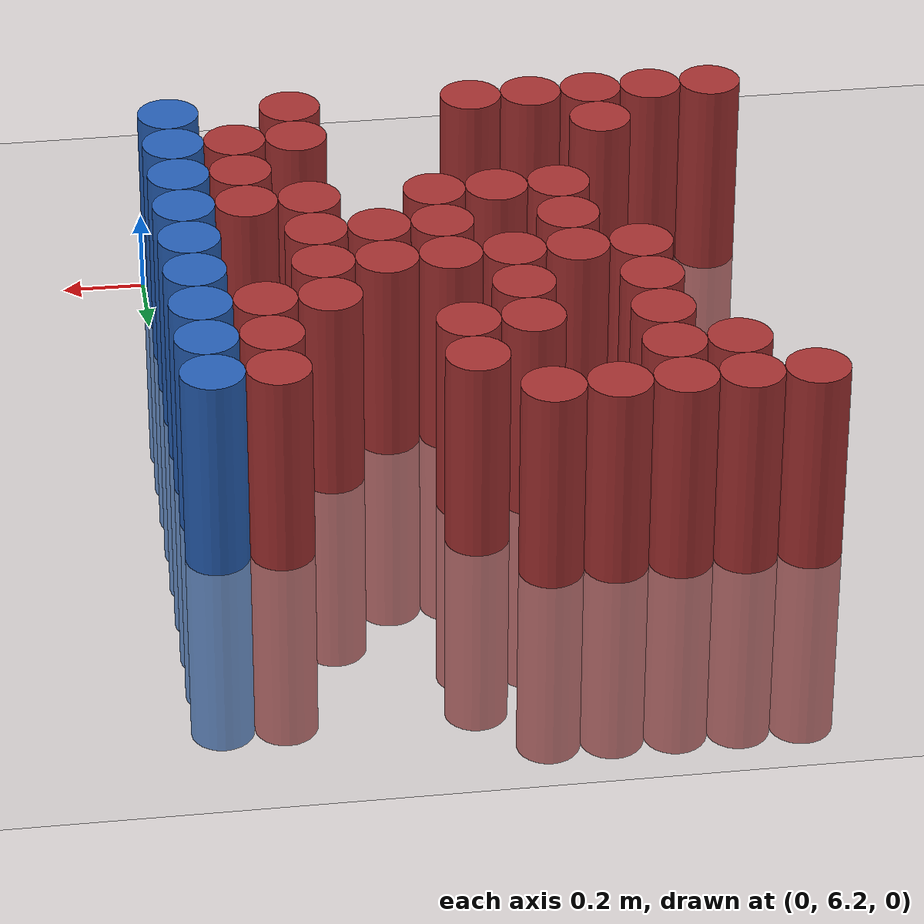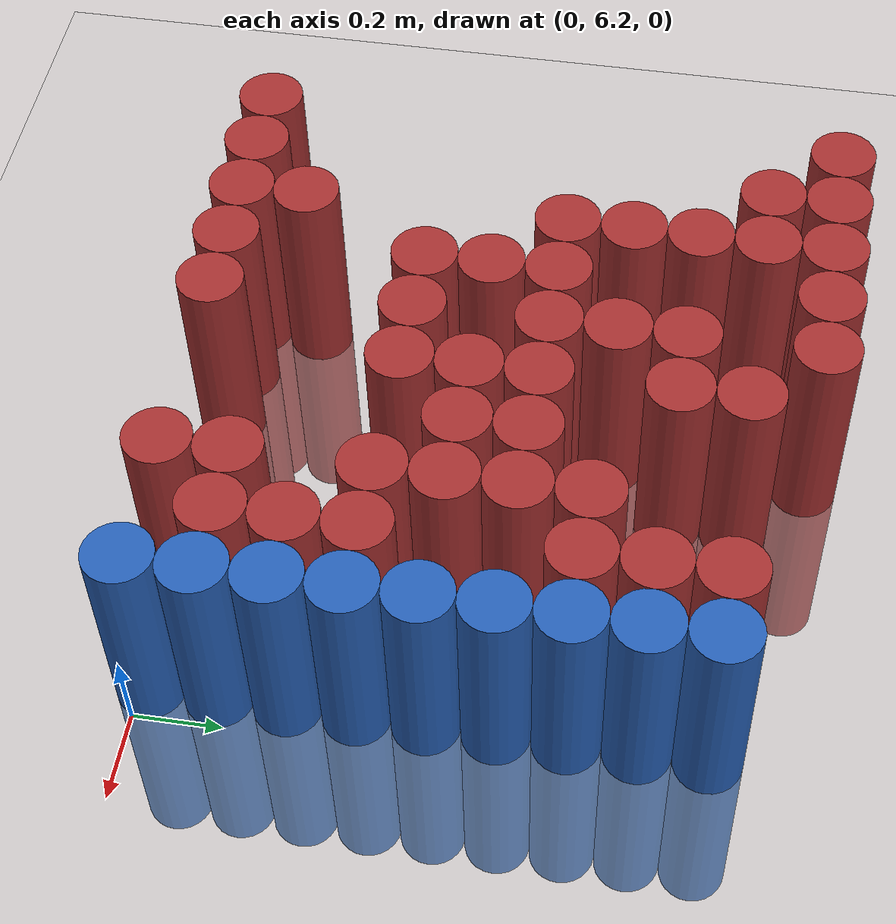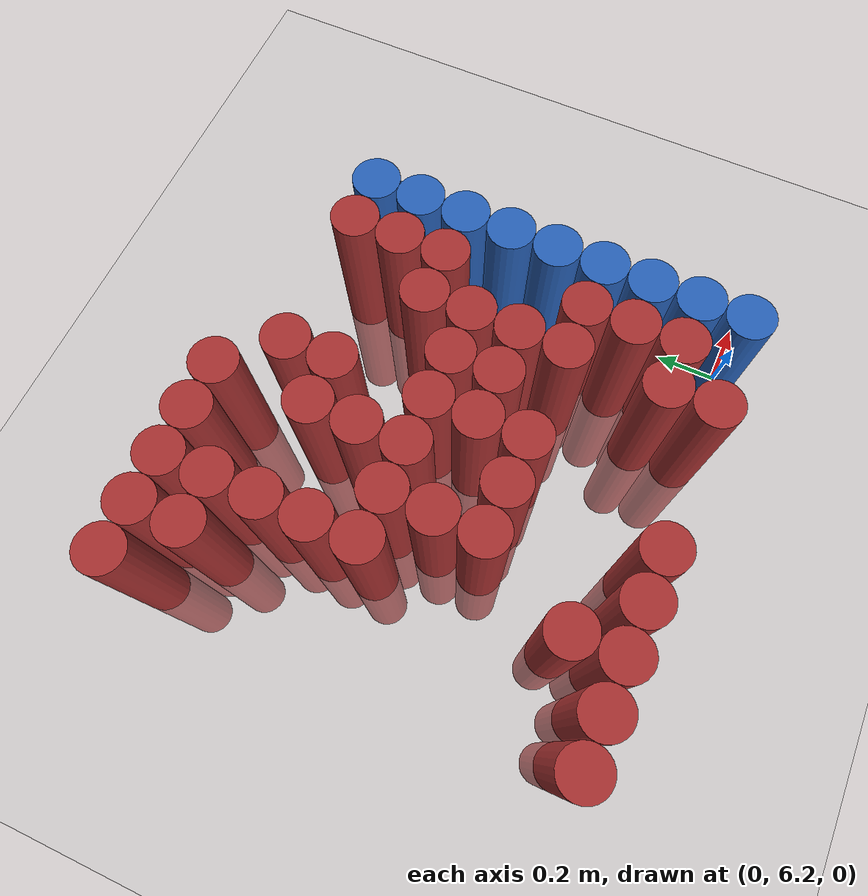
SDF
<sdf version="1.6">
 <world name="default">
  <model name="ground_plane">
   <static>1</static>
   <link name="link">
    <collision name="collision">
     <geometry><plane><normal>0 0 1</normal><size>100 100</size></plane></geometry>
     <surface><friction><ode><mu>100</mu><mu2>50</mu2></ode></friction></surface>
    </collision>
    <visual name="visual">
     <cast_shadows>0</cast_shadows>
     <geometry><plane><normal>0 0 1</normal><size>100 100</size></plane></geometry>
     <material>
      <script><uri>file://media/materials/scripts/gazebo.material</uri><name>Gazebo/Grey</name></script>
     </material>
    </visual>
   </link>
  </model>
  <model name="unit_cylinder_233">
   <static>1</static>
   <pose>-1.425000 6.225000 0.000000 0.000000 0.000000 0.000000</pose>
   <link name="link">
    <inertial>
     <mass>1</mass>
     <inertia><ixx>0.145833</ixx><ixy>0</ixy><ixz>0</ixz><iyy>0.145833</iyy><iyz>0</iyz><izz>0.125</izz></inertia>
    </inertial>
    <collision name="collision">
     <geometry><cylinder><radius>0.075000</radius><length>1</length></cylinder></geometry>
    </collision>
    <visual name="visual">
     <geometry><cylinder><radius>0.075000</radius><length>1</length></cylinder></geometry>
     <material>
      <ambient>0.648000 0.192000 0.192000 1</ambient>
      <diffuse>0.648000 0.192000 0.192000 1</diffuse>
     </material>
     <material>
      <script><name>Gazebo/Grey</name><uri>file://media/materials/scripts/gazebo.material</uri></script>
     </material>
    </visual>
   </link>
  </model>
  <model name="unit_cylinder_234">
   <static>1</static>
   <pose>-1.425000 7.575000 0.000000 0.000000 0.000000 0.000000</pose>
   <link name="link">
    <inertial>
     <mass>1</mass>
     <inertia><ixx>0.145833</ixx><ixy>0</ixy><ixz>0</ixz><iyy>0.145833</iyy><iyz>0</iyz><izz>0.125</izz></inertia>
    </inertial>
    <collision name="collision">
     <geometry><cylinder><radius>0.075000</radius><length>1</length></cylinder></geometry>
    </collision>
    <visual name="visual">
     <geometry><cylinder><radius>0.075000</radius><length>1</length></cylinder></geometry>
     <material>
      <ambient>0.648000 0.192000 0.192000 1</ambient>
      <diffuse>0.648000 0.192000 0.192000 1</diffuse>
     </material>
     <material>
      <script><name>Gazebo/Grey</name><uri>file://media/materials/scripts/gazebo.material</uri></script>
     </material>
    </visual>
   </link>
  </model>
  <model name="unit_cylinder_242">
   <static>1</static>
   <pose>-1.275000 6.225000 0.000000 0.000000 0.000000 0.000000</pose>
   <link name="link">
    <inertial>
     <mass>1</mass>
     <inertia><ixx>0.145833</ixx><ixy>0</ixy><ixz>0</ixz><iyy>0.145833</iyy><iyz>0</iyz><izz>0.125</izz></inertia>
    </inertial>
    <collision name="collision">
     <geometry><cylinder><radius>0.075000</radius><length>1</length></cylinder></geometry>
    </collision>
    <visual name="visual">
     <geometry><cylinder><radius>0.075000</radius><length>1</length></cylinder></geometry>
     <material>
      <ambient>0.648000 0.192000 0.192000 1</ambient>
      <diffuse>0.648000 0.192000 0.192000 1</diffuse>
     </material>
     <material>
      <script><name>Gazebo/Grey</name><uri>file://media/materials/scripts/gazebo.material</uri></script>
     </material>
    </visual>
   </link>
  </model>
  <model name="unit_cylinder_243">
   <static>1</static>
   <pose>-1.275000 7.425000 0.000000 0.000000 0.000000 0.000000</pose>
   <link name="link">
    <inertial>
     <mass>1</mass>
     <inertia><ixx>0.145833</ixx><ixy>0</ixy><ixz>0</ixz><iyy>0.145833</iyy><iyz>0</iyz><izz>0.125</izz></inertia>
    </inertial>
    <collision name="collision">
     <geometry><cylinder><radius>0.075000</radius><length>1</length></cylinder></geometry>
    </collision>
    <visual name="visual">
     <geometry><cylinder><radius>0.075000</radius><length>1</length></cylinder></geometry>
     <material>
      <ambient>0.648000 0.192000 0.192000 1</ambient>
      <diffuse>0.648000 0.192000 0.192000 1</diffuse>
     </material>
     <material>
      <script><name>Gazebo/Grey</name><uri>file://media/materials/scripts/gazebo.material</uri></script>
     </material>
    </visual>
   </link>
  </model>
  <model name="unit_cylinder_244">
   <static>1</static>
   <pose>-1.275000 7.575000 0.000000 0.000000 0.000000 0.000000</pose>
   <link name="link">
    <inertial>
     <mass>1</mass>
     <inertia><ixx>0.145833</ixx><ixy>0</ixy><ixz>0</ixz><iyy>0.145833</iyy><iyz>0</iyz><izz>0.125</izz></inertia>
    </inertial>
    <collision name="collision">
     <geometry><cylinder><radius>0.075000</radius><length>1</length></cylinder></geometry>
    </collision>
    <visual name="visual">
     <geometry><cylinder><radius>0.075000</radius><length>1</length></cylinder></geometry>
     <material>
      <ambient>0.648000 0.192000 0.192000 1</ambient>
      <diffuse>0.648000 0.192000 0.192000 1</diffuse>
     </material>
     <material>
      <script><name>Gazebo/Grey</name><uri>file://media/materials/scripts/gazebo.material</uri></script>
     </material>
    </visual>
   </link>
  </model>
  <model name="unit_cylinder_252">
   <static>1</static>
   <pose>-1.125000 6.225000 0.000000 0.000000 0.000000 0.000000</pose>
   <link name="link">
    <inertial>
     <mass>1</mass>
     <inertia><ixx>0.145833</ixx><ixy>0</ixy><ixz>0</ixz><iyy>0.145833</iyy><iyz>0</iyz><izz>0.125</izz></inertia>
    </inertial>
    <collision name="collision">
     <geometry><cylinder><radius>0.075000</radius><length>1</length></cylinder></geometry>
    </collision>
    <visual name="visual">
     <geometry><cylinder><radius>0.075000</radius><length>1</length></cylinder></geometry>
     <material>
      <ambient>0.648000 0.192000 0.192000 1</ambient>
      <diffuse>0.648000 0.192000 0.192000 1</diffuse>
     </material>
     <material>
      <script><name>Gazebo/Grey</name><uri>file://media/materials/scripts/gazebo.material</uri></script>
     </material>
    </visual>
   </link>
  </model>
  <model name="unit_cylinder_253">
   <static>1</static>
   <pose>-1.125000 6.375000 0.000000 0.000000 0.000000 0.000000</pose>
   <link name="link">
    <inertial>
     <mass>1</mass>
     <inertia><ixx>0.145833</ixx><ixy>0</ixy><ixz>0</ixz><iyy>0.145833</iyy><iyz>0</iyz><izz>0.125</izz></inertia>
    </inertial>
    <collision name="collision">
     <geometry><cylinder><radius>0.075000</radius><length>1</length></cylinder></geometry>
    </collision>
    <visual name="visual">
     <geometry><cylinder><radius>0.075000</radius><length>1</length></cylinder></geometry>
     <material>
      <ambient>0.648000 0.192000 0.192000 1</ambient>
      <diffuse>0.648000 0.192000 0.192000 1</diffuse>
     </material>
     <material>
      <script><name>Gazebo/Grey</name><uri>file://media/materials/scripts/gazebo.material</uri></script>
     </material>
    </visual>
   </link>
  </model>
  <model name="unit_cylinder_254">
   <static>1</static>
   <pose>-1.125000 6.975000 0.000000 0.000000 0.000000 0.000000</pose>
   <link name="link">
    <inertial>
     <mass>1</mass>
     <inertia><ixx>0.145833</ixx><ixy>0</ixy><ixz>0</ixz><iyy>0.145833</iyy><iyz>0</iyz><izz>0.125</izz></inertia>
    </inertial>
    <collision name="collision">
     <geometry><cylinder><radius>0.075000</radius><length>1</length></cylinder></geometry>
    </collision>
    <visual name="visual">
     <geometry><cylinder><radius>0.075000</radius><length>1</length></cylinder></geometry>
     <material>
      <ambient>0.648000 0.192000 0.192000 1</ambient>
      <diffuse>0.648000 0.192000 0.192000 1</diffuse>
     </material>
     <material>
      <script><name>Gazebo/Grey</name><uri>file://media/materials/scripts/gazebo.material</uri></script>
     </material>
    </visual>
   </link>
  </model>
  <model name="unit_cylinder_255">
   <static>1</static>
   <pose>-1.125000 7.125000 0.000000 0.000000 0.000000 0.000000</pose>
   <link name="link">
    <inertial>
     <mass>1</mass>
     <inertia><ixx>0.145833</ixx><ixy>0</ixy><ixz>0</ixz><iyy>0.145833</iyy><iyz>0</iyz><izz>0.125</izz></inertia>
    </inertial>
    <collision name="collision">
     <geometry><cylinder><radius>0.075000</radius><length>1</length></cylinder></geometry>
    </collision>
    <visual name="visual">
     <geometry><cylinder><radius>0.075000</radius><length>1</length></cylinder></geometry>
     <material>
      <ambient>0.648000 0.192000 0.192000 1</ambient>
      <diffuse>0.648000 0.192000 0.192000 1</diffuse>
     </material>
     <material>
      <script><name>Gazebo/Grey</name><uri>file://media/materials/scripts/gazebo.material</uri></script>
     </material>
    </visual>
   </link>
  </model>
  <model name="unit_cylinder_256">
   <static>1</static>
   <pose>-1.125000 7.275000 0.000000 0.000000 0.000000 0.000000</pose>
   <link name="link">
    <inertial>
     <mass>1</mass>
     <inertia><ixx>0.145833</ixx><ixy>0</ixy><ixz>0</ixz><iyy>0.145833</iyy><iyz>0</iyz><izz>0.125</izz></inertia>
    </inertial>
    <collision name="collision">
     <geometry><cylinder><radius>0.075000</radius><length>1</length></cylinder></geometry>
    </collision>
    <visual name="visual">
     <geometry><cylinder><radius>0.075000</radius><length>1</length></cylinder></geometry>
     <material>
      <ambient>0.648000 0.192000 0.192000 1</ambient>
      <diffuse>0.648000 0.192000 0.192000 1</diffuse>
     </material>
     <material>
      <script><name>Gazebo/Grey</name><uri>file://media/materials/scripts/gazebo.material</uri></script>
     </material>
    </visual>
   </link>
  </model>
  <model name="unit_cylinder_257">
   <static>1</static>
   <pose>-1.125000 7.425000 0.000000 0.000000 0.000000 0.000000</pose>
   <link name="link">
    <inertial>
     <mass>1</mass>
     <inertia><ixx>0.145833</ixx><ixy>0</ixy><ixz>0</ixz><iyy>0.145833</iyy><iyz>0</iyz><izz>0.125</izz></inertia>
    </inertial>
    <collision name="collision">
     <geometry><cylinder><radius>0.075000</radius><length>1</length></cylinder></geometry>
    </collision>
    <visual name="visual">
     <geometry><cylinder><radius>0.075000</radius><length>1</length></cylinder></geometry>
     <material>
      <ambient>0.648000 0.192000 0.192000 1</ambient>
      <diffuse>0.648000 0.192000 0.192000 1</diffuse>
     </material>
     <material>
      <script><name>Gazebo/Grey</name><uri>file://media/materials/scripts/gazebo.material</uri></script>
     </material>
    </visual>
   </link>
  </model>
  <model name="unit_cylinder_258">
   <static>1</static>
   <pose>-1.125000 7.575000 0.000000 0.000000 0.000000 0.000000</pose>
   <link name="link">
    <inertial>
     <mass>1</mass>
     <inertia><ixx>0.145833</ixx><ixy>0</ixy><ixz>0</ixz><iyy>0.145833</iyy><iyz>0</iyz><izz>0.125</izz></inertia>
    </inertial>
    <collision name="collision">
     <geometry><cylinder><radius>0.075000</radius><length>1</length></cylinder></geometry>
    </collision>
    <visual name="visual">
     <geometry><cylinder><radius>0.075000</radius><length>1</length></cylinder></geometry>
     <material>
      <ambient>0.648000 0.192000 0.192000 1</ambient>
      <diffuse>0.648000 0.192000 0.192000 1</diffuse>
     </material>
     <material>
      <script><name>Gazebo/Grey</name><uri>file://media/materials/scripts/gazebo.material</uri></script>
     </material>
    </visual>
   </link>
  </model>
  <model name="unit_cylinder_262">
   <static>1</static>
   <pose>-0.975000 6.225000 0.000000 0.000000 0.000000 0.000000</pose>
   <link name="link">
    <inertial>
     <mass>1</mass>
     <inertia><ixx>0.145833</ixx><ixy>0</ixy><ixz>0</ixz><iyy>0.145833</iyy><iyz>0</iyz><izz>0.125</izz></inertia>
    </inertial>
    <collision name="collision">
     <geometry><cylinder><radius>0.075000</radius><length>1</length></cylinder></geometry>
    </collision>
    <visual name="visual">
     <geometry><cylinder><radius>0.075000</radius><length>1</length></cylinder></geometry>
     <material>
      <ambient>0.648000 0.192000 0.192000 1</ambient>
      <diffuse>0.648000 0.192000 0.192000 1</diffuse>
     </material>
     <material>
      <script><name>Gazebo/Grey</name><uri>file://media/materials/scripts/gazebo.material</uri></script>
     </material>
    </visual>
   </link>
  </model>
  <model name="unit_cylinder_263">
   <static>1</static>
   <pose>-0.975000 6.675000 0.000000 0.000000 0.000000 0.000000</pose>
   <link name="link">
    <inertial>
     <mass>1</mass>
     <inertia><ixx>0.145833</ixx><ixy>0</ixy><ixz>0</ixz><iyy>0.145833</iyy><iyz>0</iyz><izz>0.125</izz></inertia>
    </inertial>
    <collision name="collision">
     <geometry><cylinder><radius>0.075000</radius><length>1</length></cylinder></geometry>
    </collision>
    <visual name="visual">
     <geometry><cylinder><radius>0.075000</radius><length>1</length></cylinder></geometry>
     <material>
      <ambient>0.648000 0.192000 0.192000 1</ambient>
      <diffuse>0.648000 0.192000 0.192000 1</diffuse>
     </material>
     <material>
      <script><name>Gazebo/Grey</name><uri>file://media/materials/scripts/gazebo.material</uri></script>
     </material>
    </visual>
   </link>
  </model>
  <model name="unit_cylinder_264">
   <static>1</static>
   <pose>-0.975000 6.825000 0.000000 0.000000 0.000000 0.000000</pose>
   <link name="link">
    <inertial>
     <mass>1</mass>
     <inertia><ixx>0.145833</ixx><ixy>0</ixy><ixz>0</ixz><iyy>0.145833</iyy><iyz>0</iyz><izz>0.125</izz></inertia>
    </inertial>
    <collision name="collision">
     <geometry><cylinder><radius>0.075000</radius><length>1</length></cylinder></geometry>
    </collision>
    <visual name="visual">
     <geometry><cylinder><radius>0.075000</radius><length>1</length></cylinder></geometry>
     <material>
      <ambient>0.648000 0.192000 0.192000 1</ambient>
      <diffuse>0.648000 0.192000 0.192000 1</diffuse>
     </material>
     <material>
      <script><name>Gazebo/Grey</name><uri>file://media/materials/scripts/gazebo.material</uri></script>
     </material>
    </visual>
   </link>
  </model>
  <model name="unit_cylinder_265">
   <static>1</static>
   <pose>-0.975000 6.975000 0.000000 0.000000 0.000000 0.000000</pose>
   <link name="link">
    <inertial>
     <mass>1</mass>
     <inertia><ixx>0.145833</ixx><ixy>0</ixy><ixz>0</ixz><iyy>0.145833</iyy><iyz>0</iyz><izz>0.125</izz></inertia>
    </inertial>
    <collision name="collision">
     <geometry><cylinder><radius>0.075000</radius><length>1</length></cylinder></geometry>
    </collision>
    <visual name="visual">
     <geometry><cylinder><radius>0.075000</radius><length>1</length></cylinder></geometry>
     <material>
      <ambient>0.648000 0.192000 0.192000 1</ambient>
      <diffuse>0.648000 0.192000 0.192000 1</diffuse>
     </material>
     <material>
      <script><name>Gazebo/Grey</name><uri>file://media/materials/scripts/gazebo.material</uri></script>
     </material>
    </visual>
   </link>
  </model>
  <model name="unit_cylinder_266">
   <static>1</static>
   <pose>-0.975000 7.575000 0.000000 0.000000 0.000000 0.000000</pose>
   <link name="link">
    <inertial>
     <mass>1</mass>
     <inertia><ixx>0.145833</ixx><ixy>0</ixy><ixz>0</ixz><iyy>0.145833</iyy><iyz>0</iyz><izz>0.125</izz></inertia>
    </inertial>
    <collision name="collision">
     <geometry><cylinder><radius>0.075000</radius><length>1</length></cylinder></geometry>
    </collision>
    <visual name="visual">
     <geometry><cylinder><radius>0.075000</radius><length>1</length></cylinder></geometry>
     <material>
      <ambient>0.648000 0.192000 0.192000 1</ambient>
      <diffuse>0.648000 0.192000 0.192000 1</diffuse>
     </material>
     <material>
      <script><name>Gazebo/Grey</name><uri>file://media/materials/scripts/gazebo.material</uri></script>
     </material>
    </visual>
   </link>
  </model>
  <model name="unit_cylinder_270">
   <static>1</static>
   <pose>-0.825000 6.225000 0.000000 0.000000 0.000000 0.000000</pose>
   <link name="link">
    <inertial>
     <mass>1</mass>
     <inertia><ixx>0.145833</ixx><ixy>0</ixy><ixz>0</ixz><iyy>0.145833</iyy><iyz>0</iyz><izz>0.125</izz></inertia>
    </inertial>
    <collision name="collision">
     <geometry><cylinder><radius>0.075000</radius><length>1</length></cylinder></geometry>
    </collision>
    <visual name="visual">
     <geometry><cylinder><radius>0.075000</radius><length>1</length></cylinder></geometry>
     <material>
      <ambient>0.648000 0.192000 0.192000 1</ambient>
      <diffuse>0.648000 0.192000 0.192000 1</diffuse>
     </material>
     <material>
      <script><name>Gazebo/Grey</name><uri>file://media/materials/scripts/gazebo.material</uri></script>
     </material>
    </visual>
   </link>
  </model>
  <model name="unit_cylinder_271">
   <static>1</static>
   <pose>-0.825000 6.675000 0.000000 0.000000 0.000000 0.000000</pose>
   <link name="link">
    <inertial>
     <mass>1</mass>
     <inertia><ixx>0.145833</ixx><ixy>0</ixy><ixz>0</ixz><iyy>0.145833</iyy><iyz>0</iyz><izz>0.125</izz></inertia>
    </inertial>
    <collision name="collision">
     <geometry><cylinder><radius>0.075000</radius><length>1</length></cylinder></geometry>
    </collision>
    <visual name="visual">
     <geometry><cylinder><radius>0.075000</radius><length>1</length></cylinder></geometry>
     <material>
      <ambient>0.648000 0.192000 0.192000 1</ambient>
      <diffuse>0.648000 0.192000 0.192000 1</diffuse>
     </material>
     <material>
      <script><name>Gazebo/Grey</name><uri>file://media/materials/scripts/gazebo.material</uri></script>
     </material>
    </visual>
   </link>
  </model>
  <model name="unit_cylinder_272">
   <static>1</static>
   <pose>-0.825000 6.975000 0.000000 0.000000 0.000000 0.000000</pose>
   <link name="link">
    <inertial>
     <mass>1</mass>
     <inertia><ixx>0.145833</ixx><ixy>0</ixy><ixz>0</ixz><iyy>0.145833</iyy><iyz>0</iyz><izz>0.125</izz></inertia>
    </inertial>
    <collision name="collision">
     <geometry><cylinder><radius>0.075000</radius><length>1</length></cylinder></geometry>
    </collision>
    <visual name="visual">
     <geometry><cylinder><radius>0.075000</radius><length>1</length></cylinder></geometry>
     <material>
      <ambient>0.648000 0.192000 0.192000 1</ambient>
      <diffuse>0.648000 0.192000 0.192000 1</diffuse>
     </material>
     <material>
      <script><name>Gazebo/Grey</name><uri>file://media/materials/scripts/gazebo.material</uri></script>
     </material>
    </visual>
   </link>
  </model>
  <model name="unit_cylinder_273">
   <static>1</static>
   <pose>-0.825000 7.125000 0.000000 0.000000 0.000000 0.000000</pose>
   <link name="link">
    <inertial>
     <mass>1</mass>
     <inertia><ixx>0.145833</ixx><ixy>0</ixy><ixz>0</ixz><iyy>0.145833</iyy><iyz>0</iyz><izz>0.125</izz></inertia>
    </inertial>
    <collision name="collision">
     <geometry><cylinder><radius>0.075000</radius><length>1</length></cylinder></geometry>
    </collision>
    <visual name="visual">
     <geometry><cylinder><radius>0.075000</radius><length>1</length></cylinder></geometry>
     <material>
      <ambient>0.648000 0.192000 0.192000 1</ambient>
      <diffuse>0.648000 0.192000 0.192000 1</diffuse>
     </material>
     <material>
      <script><name>Gazebo/Grey</name><uri>file://media/materials/scripts/gazebo.material</uri></script>
     </material>
    </visual>
   </link>
  </model>
  <model name="unit_cylinder_274">
   <static>1</static>
   <pose>-0.825000 7.275000 0.000000 0.000000 0.000000 0.000000</pose>
   <link name="link">
    <inertial>
     <mass>1</mass>
     <inertia><ixx>0.145833</ixx><ixy>0</ixy><ixz>0</ixz><iyy>0.145833</iyy><iyz>0</iyz><izz>0.125</izz></inertia>
    </inertial>
    <collision name="collision">
     <geometry><cylinder><radius>0.075000</radius><length>1</length></cylinder></geometry>
    </collision>
    <visual name="visual">
     <geometry><cylinder><radius>0.075000</radius><length>1</length></cylinder></geometry>
     <material>
      <ambient>0.648000 0.192000 0.192000 1</ambient>
      <diffuse>0.648000 0.192000 0.192000 1</diffuse>
     </material>
     <material>
      <script><name>Gazebo/Grey</name><uri>file://media/materials/scripts/gazebo.material</uri></script>
     </material>
    </visual>
   </link>
  </model>
  <model name="unit_cylinder_275">
   <static>1</static>
   <pose>-0.825000 7.575000 0.000000 0.000000 0.000000 0.000000</pose>
   <link name="link">
    <inertial>
     <mass>1</mass>
     <inertia><ixx>0.145833</ixx><ixy>0</ixy><ixz>0</ixz><iyy>0.145833</iyy><iyz>0</iyz><izz>0.125</izz></inertia>
    </inertial>
    <collision name="collision">
     <geometry><cylinder><radius>0.075000</radius><length>1</length></cylinder></geometry>
    </collision>
    <visual name="visual">
     <geometry><cylinder><radius>0.075000</radius><length>1</length></cylinder></geometry>
     <material>
      <ambient>0.648000 0.192000 0.192000 1</ambient>
      <diffuse>0.648000 0.192000 0.192000 1</diffuse>
     </material>
     <material>
      <script><name>Gazebo/Grey</name><uri>file://media/materials/scripts/gazebo.material</uri></script>
     </material>
    </visual>
   </link>
  </model>
  <model name="unit_cylinder_278">
   <static>1</static>
   <pose>-0.675000 6.675000 0.000000 0.000000 0.000000 0.000000</pose>
   <link name="link">
    <inertial>
     <mass>1</mass>
     <inertia><ixx>0.145833</ixx><ixy>0</ixy><ixz>0</ixz><iyy>0.145833</iyy><iyz>0</iyz><izz>0.125</izz></inertia>
    </inertial>
    <collision name="collision">
     <geometry><cylinder><radius>0.075000</radius><length>1</length></cylinder></geometry>
    </collision>
    <visual name="visual">
     <geometry><cylinder><radius>0.075000</radius><length>1</length></cylinder></geometry>
     <material>
      <ambient>0.648000 0.192000 0.192000 1</ambient>
      <diffuse>0.648000 0.192000 0.192000 1</diffuse>
     </material>
     <material>
      <script><name>Gazebo/Grey</name><uri>file://media/materials/scripts/gazebo.material</uri></script>
     </material>
    </visual>
   </link>
  </model>
  <model name="unit_cylinder_279">
   <static>1</static>
   <pose>-0.675000 6.825000 0.000000 0.000000 0.000000 0.000000</pose>
   <link name="link">
    <inertial>
     <mass>1</mass>
     <inertia><ixx>0.145833</ixx><ixy>0</ixy><ixz>0</ixz><iyy>0.145833</iyy><iyz>0</iyz><izz>0.125</izz></inertia>
    </inertial>
    <collision name="collision">
     <geometry><cylinder><radius>0.075000</radius><length>1</length></cylinder></geometry>
    </collision>
    <visual name="visual">
     <geometry><cylinder><radius>0.075000</radius><length>1</length></cylinder></geometry>
     <material>
      <ambient>0.648000 0.192000 0.192000 1</ambient>
      <diffuse>0.648000 0.192000 0.192000 1</diffuse>
     </material>
     <material>
      <script><name>Gazebo/Grey</name><uri>file://media/materials/scripts/gazebo.material</uri></script>
     </material>
    </visual>
   </link>
  </model>
  <model name="unit_cylinder_280">
   <static>1</static>
   <pose>-0.675000 6.975000 0.000000 0.000000 0.000000 0.000000</pose>
   <link name="link">
    <inertial>
     <mass>1</mass>
     <inertia><ixx>0.145833</ixx><ixy>0</ixy><ixz>0</ixz><iyy>0.145833</iyy><iyz>0</iyz><izz>0.125</izz></inertia>
    </inertial>
    <collision name="collision">
     <geometry><cylinder><radius>0.075000</radius><length>1</length></cylinder></geometry>
    </collision>
    <visual name="visual">
     <geometry><cylinder><radius>0.075000</radius><length>1</length></cylinder></geometry>
     <material>
      <ambient>0.648000 0.192000 0.192000 1</ambient>
      <diffuse>0.648000 0.192000 0.192000 1</diffuse>
     </material>
     <material>
      <script><name>Gazebo/Grey</name><uri>file://media/materials/scripts/gazebo.material</uri></script>
     </material>
    </visual>
   </link>
  </model>
  <model name="unit_cylinder_281">
   <static>1</static>
   <pose>-0.675000 7.275000 0.000000 0.000000 0.000000 0.000000</pose>
   <link name="link">
    <inertial>
     <mass>1</mass>
     <inertia><ixx>0.145833</ixx><ixy>0</ixy><ixz>0</ixz><iyy>0.145833</iyy><iyz>0</iyz><izz>0.125</izz></inertia>
    </inertial>
    <collision name="collision">
     <geometry><cylinder><radius>0.075000</radius><length>1</length></cylinder></geometry>
    </collision>
    <visual name="visual">
     <geometry><cylinder><radius>0.075000</radius><length>1</length></cylinder></geometry>
     <material>
      <ambient>0.648000 0.192000 0.192000 1</ambient>
      <diffuse>0.648000 0.192000 0.192000 1</diffuse>
     </material>
     <material>
      <script><name>Gazebo/Grey</name><uri>file://media/materials/scripts/gazebo.material</uri></script>
     </material>
    </visual>
   </link>
  </model>
  <model name="unit_cylinder_282">
   <static>1</static>
   <pose>-0.675000 7.425000 0.000000 0.000000 0.000000 0.000000</pose>
   <link name="link">
    <inertial>
     <mass>1</mass>
     <inertia><ixx>0.145833</ixx><ixy>0</ixy><ixz>0</ixz><iyy>0.145833</iyy><iyz>0</iyz><izz>0.125</izz></inertia>
    </inertial>
    <collision name="collision">
     <geometry><cylinder><radius>0.075000</radius><length>1</length></cylinder></geometry>
    </collision>
    <visual name="visual">
     <geometry><cylinder><radius>0.075000</radius><length>1</length></cylinder></geometry>
     <material>
      <ambient>0.648000 0.192000 0.192000 1</ambient>
      <diffuse>0.648000 0.192000 0.192000 1</diffuse>
     </material>
     <material>
      <script><name>Gazebo/Grey</name><uri>file://media/materials/scripts/gazebo.material</uri></script>
     </material>
    </visual>
   </link>
  </model>
  <model name="unit_cylinder_289">
   <static>1</static>
   <pose>-0.525000 6.825000 0.000000 0.000000 0.000000 0.000000</pose>
   <link name="link">
    <inertial>
     <mass>1</mass>
     <inertia><ixx>0.145833</ixx><ixy>0</ixy><ixz>0</ixz><iyy>0.145833</iyy><iyz>0</iyz><izz>0.125</izz></inertia>
    </inertial>
    <collision name="collision">
     <geometry><cylinder><radius>0.075000</radius><length>1</length></cylinder></geometry>
    </collision>
    <visual name="visual">
     <geometry><cylinder><radius>0.075000</radius><length>1</length></cylinder></geometry>
     <material>
      <ambient>0.648000 0.192000 0.192000 1</ambient>
      <diffuse>0.648000 0.192000 0.192000 1</diffuse>
     </material>
     <material>
      <script><name>Gazebo/Grey</name><uri>file://media/materials/scripts/gazebo.material</uri></script>
     </material>
    </visual>
   </link>
  </model>
  <model name="unit_cylinder_290">
   <static>1</static>
   <pose>-0.525000 6.975000 0.000000 0.000000 0.000000 0.000000</pose>
   <link name="link">
    <inertial>
     <mass>1</mass>
     <inertia><ixx>0.145833</ixx><ixy>0</ixy><ixz>0</ixz><iyy>0.145833</iyy><iyz>0</iyz><izz>0.125</izz></inertia>
    </inertial>
    <collision name="collision">
     <geometry><cylinder><radius>0.075000</radius><length>1</length></cylinder></geometry>
    </collision>
    <visual name="visual">
     <geometry><cylinder><radius>0.075000</radius><length>1</length></cylinder></geometry>
     <material>
      <ambient>0.648000 0.192000 0.192000 1</ambient>
      <diffuse>0.648000 0.192000 0.192000 1</diffuse>
     </material>
     <material>
      <script><name>Gazebo/Grey</name><uri>file://media/materials/scripts/gazebo.material</uri></script>
     </material>
    </visual>
   </link>
  </model>
  <model name="unit_cylinder_301">
   <static>1</static>
   <pose>-0.375000 6.225000 0.000000 0.000000 0.000000 0.000000</pose>
   <link name="link">
    <inertial>
     <mass>1</mass>
     <inertia><ixx>0.145833</ixx><ixy>0</ixy><ixz>0</ixz><iyy>0.145833</iyy><iyz>0</iyz><izz>0.125</izz></inertia>
    </inertial>
    <collision name="collision">
     <geometry><cylinder><radius>0.075000</radius><length>1</length></cylinder></geometry>
    </collision>
    <visual name="visual">
     <geometry><cylinder><radius>0.075000</radius><length>1</length></cylinder></geometry>
     <material>
      <ambient>0.648000 0.192000 0.192000 1</ambient>
      <diffuse>0.648000 0.192000 0.192000 1</diffuse>
     </material>
     <material>
      <script><name>Gazebo/Grey</name><uri>file://media/materials/scripts/gazebo.material</uri></script>
     </material>
    </visual>
   </link>
  </model>
  <model name="unit_cylinder_302">
   <static>1</static>
   <pose>-0.375000 6.375000 0.000000 0.000000 0.000000 0.000000</pose>
   <link name="link">
    <inertial>
     <mass>1</mass>
     <inertia><ixx>0.145833</ixx><ixy>0</ixy><ixz>0</ixz><iyy>0.145833</iyy><iyz>0</iyz><izz>0.125</izz></inertia>
    </inertial>
    <collision name="collision">
     <geometry><cylinder><radius>0.075000</radius><length>1</length></cylinder></geometry>
    </collision>
    <visual name="visual">
     <geometry><cylinder><radius>0.075000</radius><length>1</length></cylinder></geometry>
     <material>
      <ambient>0.648000 0.192000 0.192000 1</ambient>
      <diffuse>0.648000 0.192000 0.192000 1</diffuse>
     </material>
     <material>
      <script><name>Gazebo/Grey</name><uri>file://media/materials/scripts/gazebo.material</uri></script>
     </material>
    </visual>
   </link>
  </model>
  <model name="unit_cylinder_303">
   <static>1</static>
   <pose>-0.375000 6.675000 0.000000 0.000000 0.000000 0.000000</pose>
   <link name="link">
    <inertial>
     <mass>1</mass>
     <inertia><ixx>0.145833</ixx><ixy>0</ixy><ixz>0</ixz><iyy>0.145833</iyy><iyz>0</iyz><izz>0.125</izz></inertia>
    </inertial>
    <collision name="collision">
     <geometry><cylinder><radius>0.075000</radius><length>1</length></cylinder></geometry>
    </collision>
    <visual name="visual">
     <geometry><cylinder><radius>0.075000</radius><length>1</length></cylinder></geometry>
     <material>
      <ambient>0.648000 0.192000 0.192000 1</ambient>
      <diffuse>0.648000 0.192000 0.192000 1</diffuse>
     </material>
     <material>
      <script><name>Gazebo/Grey</name><uri>file://media/materials/scripts/gazebo.material</uri></script>
     </material>
    </visual>
   </link>
  </model>
  <model name="unit_cylinder_304">
   <static>1</static>
   <pose>-0.375000 6.825000 0.000000 0.000000 0.000000 0.000000</pose>
   <link name="link">
    <inertial>
     <mass>1</mass>
     <inertia><ixx>0.145833</ixx><ixy>0</ixy><ixz>0</ixz><iyy>0.145833</iyy><iyz>0</iyz><izz>0.125</izz></inertia>
    </inertial>
    <collision name="collision">
     <geometry><cylinder><radius>0.075000</radius><length>1</length></cylinder></geometry>
    </collision>
    <visual name="visual">
     <geometry><cylinder><radius>0.075000</radius><length>1</length></cylinder></geometry>
     <material>
      <ambient>0.648000 0.192000 0.192000 1</ambient>
      <diffuse>0.648000 0.192000 0.192000 1</diffuse>
     </material>
     <material>
      <script><name>Gazebo/Grey</name><uri>file://media/materials/scripts/gazebo.material</uri></script>
     </material>
    </visual>
   </link>
  </model>
  <model name="unit_cylinder_305">
   <static>1</static>
   <pose>-0.375000 6.975000 0.000000 0.000000 0.000000 0.000000</pose>
   <link name="link">
    <inertial>
     <mass>1</mass>
     <inertia><ixx>0.145833</ixx><ixy>0</ixy><ixz>0</ixz><iyy>0.145833</iyy><iyz>0</iyz><izz>0.125</izz></inertia>
    </inertial>
    <collision name="collision">
     <geometry><cylinder><radius>0.075000</radius><length>1</length></cylinder></geometry>
    </collision>
    <visual name="visual">
     <geometry><cylinder><radius>0.075000</radius><length>1</length></cylinder></geometry>
     <material>
      <ambient>0.648000 0.192000 0.192000 1</ambient>
      <diffuse>0.648000 0.192000 0.192000 1</diffuse>
     </material>
     <material>
      <script><name>Gazebo/Grey</name><uri>file://media/materials/scripts/gazebo.material</uri></script>
     </material>
    </visual>
   </link>
  </model>
  <model name="unit_cylinder_306">
   <static>1</static>
   <pose>-0.375000 7.125000 0.000000 0.000000 0.000000 0.000000</pose>
   <link name="link">
    <inertial>
     <mass>1</mass>
     <inertia><ixx>0.145833</ixx><ixy>0</ixy><ixz>0</ixz><iyy>0.145833</iyy><iyz>0</iyz><izz>0.125</izz></inertia>
    </inertial>
    <collision name="collision">
     <geometry><cylinder><radius>0.075000</radius><length>1</length></cylinder></geometry>
    </collision>
    <visual name="visual">
     <geometry><cylinder><radius>0.075000</radius><length>1</length></cylinder></geometry>
     <material>
      <ambient>0.648000 0.192000 0.192000 1</ambient>
      <diffuse>0.648000 0.192000 0.192000 1</diffuse>
     </material>
     <material>
      <script><name>Gazebo/Grey</name><uri>file://media/materials/scripts/gazebo.material</uri></script>
     </material>
    </visual>
   </link>
  </model>
  <model name="unit_cylinder_314">
   <static>1</static>
   <pose>-0.225000 6.375000 0.000000 0.000000 0.000000 0.000000</pose>
   <link name="link">
    <inertial>
     <mass>1</mass>
     <inertia><ixx>0.145833</ixx><ixy>0</ixy><ixz>0</ixz><iyy>0.145833</iyy><iyz>0</iyz><izz>0.125</izz></inertia>
    </inertial>
    <collision name="collision">
     <geometry><cylinder><radius>0.075000</radius><length>1</length></cylinder></geometry>
    </collision>
    <visual name="visual">
     <geometry><cylinder><radius>0.075000</radius><length>1</length></cylinder></geometry>
     <material>
      <ambient>0.648000 0.192000 0.192000 1</ambient>
      <diffuse>0.648000 0.192000 0.192000 1</diffuse>
     </material>
     <material>
      <script><name>Gazebo/Grey</name><uri>file://media/materials/scripts/gazebo.material</uri></script>
     </material>
    </visual>
   </link>
  </model>
  <model name="unit_cylinder_315">
   <static>1</static>
   <pose>-0.225000 6.525000 0.000000 0.000000 0.000000 0.000000</pose>
   <link name="link">
    <inertial>
     <mass>1</mass>
     <inertia><ixx>0.145833</ixx><ixy>0</ixy><ixz>0</ixz><iyy>0.145833</iyy><iyz>0</iyz><izz>0.125</izz></inertia>
    </inertial>
    <collision name="collision">
     <geometry><cylinder><radius>0.075000</radius><length>1</length></cylinder></geometry>
    </collision>
    <visual name="visual">
     <geometry><cylinder><radius>0.075000</radius><length>1</length></cylinder></geometry>
     <material>
      <ambient>0.648000 0.192000 0.192000 1</ambient>
      <diffuse>0.648000 0.192000 0.192000 1</diffuse>
     </material>
     <material>
      <script><name>Gazebo/Grey</name><uri>file://media/materials/scripts/gazebo.material</uri></script>
     </material>
    </visual>
   </link>
  </model>
  <model name="unit_cylinder_316">
   <static>1</static>
   <pose>-0.225000 6.675000 0.000000 0.000000 0.000000 0.000000</pose>
   <link name="link">
    <inertial>
     <mass>1</mass>
     <inertia><ixx>0.145833</ixx><ixy>0</ixy><ixz>0</ixz><iyy>0.145833</iyy><iyz>0</iyz><izz>0.125</izz></inertia>
    </inertial>
    <collision name="collision">
     <geometry><cylinder><radius>0.075000</radius><length>1</length></cylinder></geometry>
    </collision>
    <visual name="visual">
     <geometry><cylinder><radius>0.075000</radius><length>1</length></cylinder></geometry>
     <material>
      <ambient>0.648000 0.192000 0.192000 1</ambient>
      <diffuse>0.648000 0.192000 0.192000 1</diffuse>
     </material>
     <material>
      <script><name>Gazebo/Grey</name><uri>file://media/materials/scripts/gazebo.material</uri></script>
     </material>
    </visual>
   </link>
  </model>
  <model name="unit_cylinder_317">
   <static>1</static>
   <pose>-0.225000 7.125000 0.000000 0.000000 0.000000 0.000000</pose>
   <link name="link">
    <inertial>
     <mass>1</mass>
     <inertia><ixx>0.145833</ixx><ixy>0</ixy><ixz>0</ixz><iyy>0.145833</iyy><iyz>0</iyz><izz>0.125</izz></inertia>
    </inertial>
    <collision name="collision">
     <geometry><cylinder><radius>0.075000</radius><length>1</length></cylinder></geometry>
    </collision>
    <visual name="visual">
     <geometry><cylinder><radius>0.075000</radius><length>1</length></cylinder></geometry>
     <material>
      <ambient>0.648000 0.192000 0.192000 1</ambient>
      <diffuse>0.648000 0.192000 0.192000 1</diffuse>
     </material>
     <material>
      <script><name>Gazebo/Grey</name><uri>file://media/materials/scripts/gazebo.material</uri></script>
     </material>
    </visual>
   </link>
  </model>
  <model name="unit_cylinder_318">
   <static>1</static>
   <pose>-0.225000 7.275000 0.000000 0.000000 0.000000 0.000000</pose>
   <link name="link">
    <inertial>
     <mass>1</mass>
     <inertia><ixx>0.145833</ixx><ixy>0</ixy><ixz>0</ixz><iyy>0.145833</iyy><iyz>0</iyz><izz>0.125</izz></inertia>
    </inertial>
    <collision name="collision">
     <geometry><cylinder><radius>0.075000</radius><length>1</length></cylinder></geometry>
    </collision>
    <visual name="visual">
     <geometry><cylinder><radius>0.075000</radius><length>1</length></cylinder></geometry>
     <material>
      <ambient>0.648000 0.192000 0.192000 1</ambient>
      <diffuse>0.648000 0.192000 0.192000 1</diffuse>
     </material>
     <material>
      <script><name>Gazebo/Grey</name><uri>file://media/materials/scripts/gazebo.material</uri></script>
     </material>
    </visual>
   </link>
  </model>
  <model name="unit_cylinder_319">
   <static>1</static>
   <pose>-0.225000 7.425000 0.000000 0.000000 0.000000 0.000000</pose>
   <link name="link">
    <inertial>
     <mass>1</mass>
     <inertia><ixx>0.145833</ixx><ixy>0</ixy><ixz>0</ixz><iyy>0.145833</iyy><iyz>0</iyz><izz>0.125</izz></inertia>
    </inertial>
    <collision name="collision">
     <geometry><cylinder><radius>0.075000</radius><length>1</length></cylinder></geometry>
    </collision>
    <visual name="visual">
     <geometry><cylinder><radius>0.075000</radius><length>1</length></cylinder></geometry>
     <material>
      <ambient>0.648000 0.192000 0.192000 1</ambient>
      <diffuse>0.648000 0.192000 0.192000 1</diffuse>
     </material>
     <material>
      <script><name>Gazebo/Grey</name><uri>file://media/materials/scripts/gazebo.material</uri></script>
     </material>
    </visual>
   </link>
  </model>
  <model name="unit_cylinder_332">
   <static>1</static>
   <pose>-0.075000 6.225000 0.000000 0.000000 0.000000 0.000000</pose>
   <link name="link">
    <inertial>
     <mass>1</mass>
     <inertia><ixx>0.145833</ixx><ixy>0</ixy><ixz>0</ixz><iyy>0.145833</iyy><iyz>0</iyz><izz>0.125</izz></inertia>
    </inertial>
    <collision name="collision">
     <geometry><cylinder><radius>0.075000</radius><length>1</length></cylinder></geometry>
    </collision>
    <visual name="visual">
     <geometry><cylinder><radius>0.075000</radius><length>1</length></cylinder></geometry>
     <material>
      <ambient>0.152000 0.379000 0.720000 1</ambient>
      <diffuse>0.152000 0.379000 0.720000 1</diffuse>
     </material>
     <material>
      <script><name>Gazebo/Grey</name><uri>file://media/materials/scripts/gazebo.material</uri></script>
     </material>
    </visual>
   </link>
  </model>
  <model name="unit_cylinder_333">
   <static>1</static>
   <pose>-0.075000 6.375000 0.000000 0.000000 0.000000 0.000000</pose>
   <link name="link">
    <inertial>
     <mass>1</mass>
     <inertia><ixx>0.145833</ixx><ixy>0</ixy><ixz>0</ixz><iyy>0.145833</iyy><iyz>0</iyz><izz>0.125</izz></inertia>
    </inertial>
    <collision name="collision">
     <geometry><cylinder><radius>0.075000</radius><length>1</length></cylinder></geometry>
    </collision>
    <visual name="visual">
     <geometry><cylinder><radius>0.075000</radius><length>1</length></cylinder></geometry>
     <material>
      <ambient>0.152000 0.379000 0.720000 1</ambient>
      <diffuse>0.152000 0.379000 0.720000 1</diffuse>
     </material>
     <material>
      <script><name>Gazebo/Grey</name><uri>file://media/materials/scripts/gazebo.material</uri></script>
     </material>
    </visual>
   </link>
  </model>
  <model name="unit_cylinder_334">
   <static>1</static>
   <pose>-0.075000 6.525000 0.000000 0.000000 0.000000 0.000000</pose>
   <link name="link">
    <inertial>
     <mass>1</mass>
     <inertia><ixx>0.145833</ixx><ixy>0</ixy><ixz>0</ixz><iyy>0.145833</iyy><iyz>0</iyz><izz>0.125</izz></inertia>
    </inertial>
    <collision name="collision">
     <geometry><cylinder><radius>0.075000</radius><length>1</length></cylinder></geometry>
    </collision>
    <visual name="visual">
     <geometry><cylinder><radius>0.075000</radius><length>1</length></cylinder></geometry>
     <material>
      <ambient>0.152000 0.379000 0.720000 1</ambient>
      <diffuse>0.152000 0.379000 0.720000 1</diffuse>
     </material>
     <material>
      <script><name>Gazebo/Grey</name><uri>file://media/materials/scripts/gazebo.material</uri></script>
     </material>
    </visual>
   </link>
  </model>
  <model name="unit_cylinder_335">
   <static>1</static>
   <pose>-0.075000 6.675000 0.000000 0.000000 0.000000 0.000000</pose>
   <link name="link">
    <inertial>
     <mass>1</mass>
     <inertia><ixx>0.145833</ixx><ixy>0</ixy><ixz>0</ixz><iyy>0.145833</iyy><iyz>0</iyz><izz>0.125</izz></inertia>
    </inertial>
    <collision name="collision">
     <geometry><cylinder><radius>0.075000</radius><length>1</length></cylinder></geometry>
    </collision>
    <visual name="visual">
     <geometry><cylinder><radius>0.075000</radius><length>1</length></cylinder></geometry>
     <material>
      <ambient>0.152000 0.379000 0.720000 1</ambient>
      <diffuse>0.152000 0.379000 0.720000 1</diffuse>
     </material>
     <material>
      <script><name>Gazebo/Grey</name><uri>file://media/materials/scripts/gazebo.material</uri></script>
     </material>
    </visual>
   </link>
  </model>
  <model name="unit_cylinder_336">
   <static>1</static>
   <pose>-0.075000 6.825000 0.000000 0.000000 0.000000 0.000000</pose>
   <link name="link">
    <inertial>
     <mass>1</mass>
     <inertia><ixx>0.145833</ixx><ixy>0</ixy><ixz>0</ixz><iyy>0.145833</iyy><iyz>0</iyz><izz>0.125</izz></inertia>
    </inertial>
    <collision name="collision">
     <geometry><cylinder><radius>0.075000</radius><length>1</length></cylinder></geometry>
    </collision>
    <visual name="visual">
     <geometry><cylinder><radius>0.075000</radius><length>1</length></cylinder></geometry>
     <material>
      <ambient>0.152000 0.379000 0.720000 1</ambient>
      <diffuse>0.152000 0.379000 0.720000 1</diffuse>
     </material>
     <material>
      <script><name>Gazebo/Grey</name><uri>file://media/materials/scripts/gazebo.material</uri></script>
     </material>
    </visual>
   </link>
  </model>
  <model name="unit_cylinder_337">
   <static>1</static>
   <pose>-0.075000 6.975000 0.000000 0.000000 0.000000 0.000000</pose>
   <link name="link">
    <inertial>
     <mass>1</mass>
     <inertia><ixx>0.145833</ixx><ixy>0</ixy><ixz>0</ixz><iyy>0.145833</iyy><iyz>0</iyz><izz>0.125</izz></inertia>
    </inertial>
    <collision name="collision">
     <geometry><cylinder><radius>0.075000</radius><length>1</length></cylinder></geometry>
    </collision>
    <visual name="visual">
     <geometry><cylinder><radius>0.075000</radius><length>1</length></cylinder></geometry>
     <material>
      <ambient>0.152000 0.379000 0.720000 1</ambient>
      <diffuse>0.152000 0.379000 0.720000 1</diffuse>
     </material>
     <material>
      <script><name>Gazebo/Grey</name><uri>file://media/materials/scripts/gazebo.material</uri></script>
     </material>
    </visual>
   </link>
  </model>
  <model name="unit_cylinder_338">
   <static>1</static>
   <pose>-0.075000 7.125000 0.000000 0.000000 0.000000 0.000000</pose>
   <link name="link">
    <inertial>
     <mass>1</mass>
     <inertia><ixx>0.145833</ixx><ixy>0</ixy><ixz>0</ixz><iyy>0.145833</iyy><iyz>0</iyz><izz>0.125</izz></inertia>
    </inertial>
    <collision name="collision">
     <geometry><cylinder><radius>0.075000</radius><length>1</length></cylinder></geometry>
    </collision>
    <visual name="visual">
     <geometry><cylinder><radius>0.075000</radius><length>1</length></cylinder></geometry>
     <material>
      <ambient>0.152000 0.379000 0.720000 1</ambient>
      <diffuse>0.152000 0.379000 0.720000 1</diffuse>
     </material>
     <material>
      <script><name>Gazebo/Grey</name><uri>file://media/materials/scripts/gazebo.material</uri></script>
     </material>
    </visual>
   </link>
  </model>
  <model name="unit_cylinder_339">
   <static>1</static>
   <pose>-0.075000 7.275000 0.000000 0.000000 0.000000 0.000000</pose>
   <link name="link">
    <inertial>
     <mass>1</mass>
     <inertia><ixx>0.145833</ixx><ixy>0</ixy><ixz>0</ixz><iyy>0.145833</iyy><iyz>0</iyz><izz>0.125</izz></inertia>
    </inertial>
    <collision name="collision">
     <geometry><cylinder><radius>0.075000</radius><length>1</length></cylinder></geometry>
    </collision>
    <visual name="visual">
     <geometry><cylinder><radius>0.075000</radius><length>1</length></cylinder></geometry>
     <material>
      <ambient>0.152000 0.379000 0.720000 1</ambient>
      <diffuse>0.152000 0.379000 0.720000 1</diffuse>
     </material>
     <material>
      <script><name>Gazebo/Grey</name><uri>file://media/materials/scripts/gazebo.material</uri></script>
     </material>
    </visual>
   </link>
  </model>
  <model name="unit_cylinder_340">
   <static>1</static>
   <pose>-0.075000 7.425000 0.000000 0.000000 0.000000 0.000000</pose>
   <link name="link">
    <inertial>
     <mass>1</mass>
     <inertia><ixx>0.145833</ixx><ixy>0</ixy><ixz>0</ixz><iyy>0.145833</iyy><iyz>0</iyz><izz>0.125</izz></inertia>
    </inertial>
    <collision name="collision">
     <geometry><cylinder><radius>0.075000</radius><length>1</length></cylinder></geometry>
    </collision>
    <visual name="visual">
     <geometry><cylinder><radius>0.075000</radius><length>1</length></cylinder></geometry>
     <material>
      <ambient>0.152000 0.379000 0.720000 1</ambient>
      <diffuse>0.152000 0.379000 0.720000 1</diffuse>
     </material>
     <material>
      <script><name>Gazebo/Grey</name><uri>file://media/materials/scripts/gazebo.material</uri></script>
     </material>
    </visual>
   </link>
  </model>
 </world>
</sdf>
